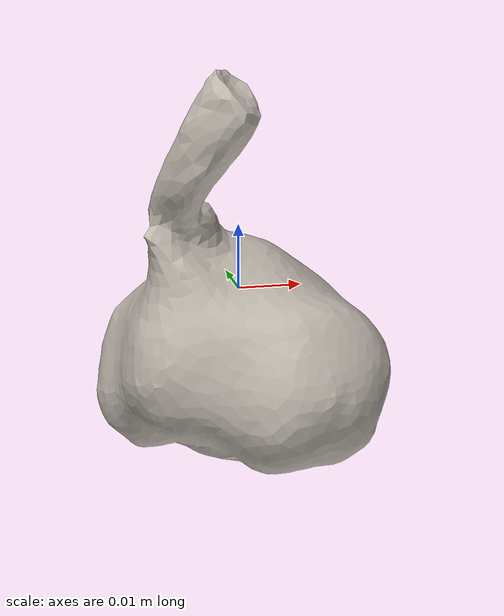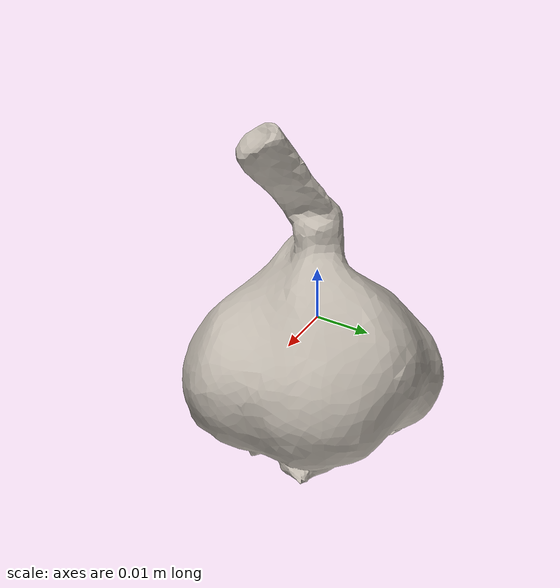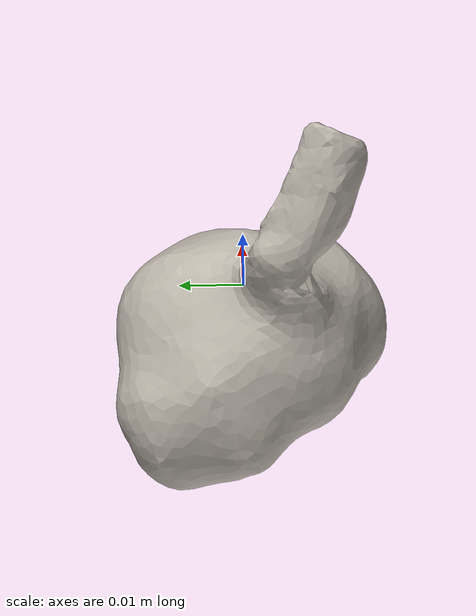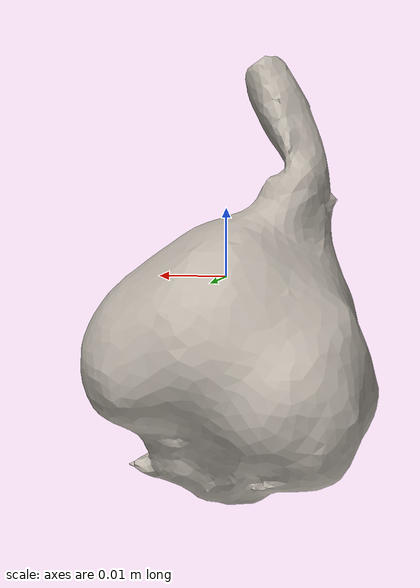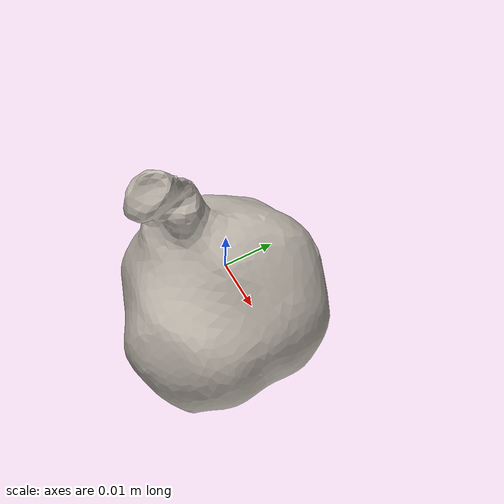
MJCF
<mujoco model="garlic_6">
  <asset>
    <mesh file="visual/model_normalized_0.obj" name="model_normalized_0_vis" scale="0.065 0.065 0.065" refquat="0.923879532511287 0.0 0.0 0.38268343236508984"/>
    <mesh file="collision/model_normalized_collision_22.obj" name="model_normalized_collision_22._coll" scale="0.065 0.065 0.065" refquat="0.923879532511287 0.0 0.0 0.38268343236508984"/>
    <mesh file="collision/model_normalized_collision_23.obj" name="model_normalized_collision_23._coll" scale="0.065 0.065 0.065" refquat="0.923879532511287 0.0 0.0 0.38268343236508984"/>
    <mesh file="collision/model_normalized_collision_21.obj" name="model_normalized_collision_21._coll" scale="0.065 0.065 0.065" refquat="0.923879532511287 0.0 0.0 0.38268343236508984"/>
    <mesh file="collision/model_normalized_collision_20.obj" name="model_normalized_collision_20._coll" scale="0.065 0.065 0.065" refquat="0.923879532511287 0.0 0.0 0.38268343236508984"/>
    <mesh file="collision/model_normalized_collision_24.obj" name="model_normalized_collision_24._coll" scale="0.065 0.065 0.065" refquat="0.923879532511287 0.0 0.0 0.38268343236508984"/>
    <mesh file="collision/model_normalized_collision_30.obj" name="model_normalized_collision_30._coll" scale="0.065 0.065 0.065" refquat="0.923879532511287 0.0 0.0 0.38268343236508984"/>
    <mesh file="collision/model_normalized_collision_18.obj" name="model_normalized_collision_18._coll" scale="0.065 0.065 0.065" refquat="0.923879532511287 0.0 0.0 0.38268343236508984"/>
    <mesh file="collision/model_normalized_collision_19.obj" name="model_normalized_collision_19._coll" scale="0.065 0.065 0.065" refquat="0.923879532511287 0.0 0.0 0.38268343236508984"/>
    <mesh file="collision/model_normalized_collision_31.obj" name="model_normalized_collision_31._coll" scale="0.065 0.065 0.065" refquat="0.923879532511287 0.0 0.0 0.38268343236508984"/>
    <mesh file="collision/model_normalized_collision_25.obj" name="model_normalized_collision_25._coll" scale="0.065 0.065 0.065" refquat="0.923879532511287 0.0 0.0 0.38268343236508984"/>
    <mesh file="collision/model_normalized_collision_27.obj" name="model_normalized_collision_27._coll" scale="0.065 0.065 0.065" refquat="0.923879532511287 0.0 0.0 0.38268343236508984"/>
    <mesh file="collision/model_normalized_collision_26.obj" name="model_normalized_collision_26._coll" scale="0.065 0.065 0.065" refquat="0.923879532511287 0.0 0.0 0.38268343236508984"/>
    <mesh file="collision/model_normalized_collision_9.obj" name="model_normalized_collision_9._coll" scale="0.065 0.065 0.065" refquat="0.923879532511287 0.0 0.0 0.38268343236508984"/>
    <mesh file="collision/model_normalized_collision_8.obj" name="model_normalized_collision_8._coll" scale="0.065 0.065 0.065" refquat="0.923879532511287 0.0 0.0 0.38268343236508984"/>
    <mesh file="collision/model_normalized_collision_6.obj" name="model_normalized_collision_6._coll" scale="0.065 0.065 0.065" refquat="0.923879532511287 0.0 0.0 0.38268343236508984"/>
    <mesh file="collision/model_normalized_collision_7.obj" name="model_normalized_collision_7._coll" scale="0.065 0.065 0.065" refquat="0.923879532511287 0.0 0.0 0.38268343236508984"/>
    <mesh file="collision/model_normalized_collision_5.obj" name="model_normalized_collision_5._coll" scale="0.065 0.065 0.065" refquat="0.923879532511287 0.0 0.0 0.38268343236508984"/>
    <mesh file="collision/model_normalized_collision_4.obj" name="model_normalized_collision_4._coll" scale="0.065 0.065 0.065" refquat="0.923879532511287 0.0 0.0 0.38268343236508984"/>
    <mesh file="collision/model_normalized_collision_0.obj" name="model_normalized_collision_0._coll" scale="0.065 0.065 0.065" refquat="0.923879532511287 0.0 0.0 0.38268343236508984"/>
    <mesh file="collision/model_normalized_collision_1.obj" name="model_normalized_collision_1._coll" scale="0.065 0.065 0.065" refquat="0.923879532511287 0.0 0.0 0.38268343236508984"/>
    <mesh file="collision/model_normalized_collision_3.obj" name="model_normalized_collision_3._coll" scale="0.065 0.065 0.065" refquat="0.923879532511287 0.0 0.0 0.38268343236508984"/>
    <mesh file="collision/model_normalized_collision_2.obj" name="model_normalized_collision_2._coll" scale="0.065 0.065 0.065" refquat="0.923879532511287 0.0 0.0 0.38268343236508984"/>
    <mesh file="collision/model_normalized_collision_17.obj" name="model_normalized_collision_17._coll" scale="0.065 0.065 0.065" refquat="0.923879532511287 0.0 0.0 0.38268343236508984"/>
    <mesh file="collision/model_normalized_collision_16.obj" name="model_normalized_collision_16._coll" scale="0.065 0.065 0.065" refquat="0.923879532511287 0.0 0.0 0.38268343236508984"/>
    <mesh file="collision/model_normalized_collision_28.obj" name="model_normalized_collision_28._coll" scale="0.065 0.065 0.065" refquat="0.923879532511287 0.0 0.0 0.38268343236508984"/>
    <mesh file="collision/model_normalized_collision_14.obj" name="model_normalized_collision_14._coll" scale="0.065 0.065 0.065" refquat="0.923879532511287 0.0 0.0 0.38268343236508984"/>
    <mesh file="collision/model_normalized_collision_15.obj" name="model_normalized_collision_15._coll" scale="0.065 0.065 0.065" refquat="0.923879532511287 0.0 0.0 0.38268343236508984"/>
    <mesh file="collision/model_normalized_collision_29.obj" name="model_normalized_collision_29._coll" scale="0.065 0.065 0.065" refquat="0.923879532511287 0.0 0.0 0.38268343236508984"/>
    <mesh file="collision/model_normalized_collision_11.obj" name="model_normalized_collision_11._coll" scale="0.065 0.065 0.065" refquat="0.923879532511287 0.0 0.0 0.38268343236508984"/>
    <mesh file="collision/model_normalized_collision_10.obj" name="model_normalized_collision_10._coll" scale="0.065 0.065 0.065" refquat="0.923879532511287 0.0 0.0 0.38268343236508984"/>
    <mesh file="collision/model_normalized_collision_12.obj" name="model_normalized_collision_12._coll" scale="0.065 0.065 0.065" refquat="0.923879532511287 0.0 0.0 0.38268343236508984"/>
    <mesh file="collision/model_normalized_collision_13.obj" name="model_normalized_collision_13._coll" scale="0.065 0.065 0.065" refquat="0.923879532511287 0.0 0.0 0.38268343236508984"/>
    <texture type="2d" name="image0" file="visual/image0.png"/>
    <material name="Garlic_u1_v1" texture="image0" specular="0.5" shininess="0.0"/>
  </asset>
  <worldbody>
  <body>
      <body name="object">
        <geom solimp="0.998 0.998 0.001" solref="0.001 1" density="100" friction="0.95 0.3 0.1" type="mesh" mesh="model_normalized_0_vis" conaffinity="0" contype="0" group="1" material="Garlic_u1_v1"/>
        <geom solimp="0.998 0.998 0.001" solref="0.001 1" density="100" friction="0.95 0.3 0.1" type="mesh" mesh="model_normalized_collision_22._coll" group="0" rgba="0.8 0.8 0.8 0.0"/>
        <geom solimp="0.998 0.998 0.001" solref="0.001 1" density="100" friction="0.95 0.3 0.1" type="mesh" mesh="model_normalized_collision_23._coll" group="0" rgba="0.8 0.8 0.8 0.0"/>
        <geom solimp="0.998 0.998 0.001" solref="0.001 1" density="100" friction="0.95 0.3 0.1" type="mesh" mesh="model_normalized_collision_21._coll" group="0" rgba="0.8 0.8 0.8 0.0"/>
        <geom solimp="0.998 0.998 0.001" solref="0.001 1" density="100" friction="0.95 0.3 0.1" type="mesh" mesh="model_normalized_collision_20._coll" group="0" rgba="0.8 0.8 0.8 0.0"/>
        <geom solimp="0.998 0.998 0.001" solref="0.001 1" density="100" friction="0.95 0.3 0.1" type="mesh" mesh="model_normalized_collision_24._coll" group="0" rgba="0.8 0.8 0.8 0.0"/>
        <geom solimp="0.998 0.998 0.001" solref="0.001 1" density="100" friction="0.95 0.3 0.1" type="mesh" mesh="model_normalized_collision_30._coll" group="0" rgba="0.8 0.8 0.8 0.0"/>
        <geom solimp="0.998 0.998 0.001" solref="0.001 1" density="100" friction="0.95 0.3 0.1" type="mesh" mesh="model_normalized_collision_18._coll" group="0" rgba="0.8 0.8 0.8 0.0"/>
        <geom solimp="0.998 0.998 0.001" solref="0.001 1" density="100" friction="0.95 0.3 0.1" type="mesh" mesh="model_normalized_collision_19._coll" group="0" rgba="0.8 0.8 0.8 0.0"/>
        <geom solimp="0.998 0.998 0.001" solref="0.001 1" density="100" friction="0.95 0.3 0.1" type="mesh" mesh="model_normalized_collision_31._coll" group="0" rgba="0.8 0.8 0.8 0.0"/>
        <geom solimp="0.998 0.998 0.001" solref="0.001 1" density="100" friction="0.95 0.3 0.1" type="mesh" mesh="model_normalized_collision_25._coll" group="0" rgba="0.8 0.8 0.8 0.0"/>
        <geom solimp="0.998 0.998 0.001" solref="0.001 1" density="100" friction="0.95 0.3 0.1" type="mesh" mesh="model_normalized_collision_27._coll" group="0" rgba="0.8 0.8 0.8 0.0"/>
        <geom solimp="0.998 0.998 0.001" solref="0.001 1" density="100" friction="0.95 0.3 0.1" type="mesh" mesh="model_normalized_collision_26._coll" group="0" rgba="0.8 0.8 0.8 0.0"/>
        <geom solimp="0.998 0.998 0.001" solref="0.001 1" density="100" friction="0.95 0.3 0.1" type="mesh" mesh="model_normalized_collision_9._coll" group="0" rgba="0.8 0.8 0.8 0.0"/>
        <geom solimp="0.998 0.998 0.001" solref="0.001 1" density="100" friction="0.95 0.3 0.1" type="mesh" mesh="model_normalized_collision_8._coll" group="0" rgba="0.8 0.8 0.8 0.0"/>
        <geom solimp="0.998 0.998 0.001" solref="0.001 1" density="100" friction="0.95 0.3 0.1" type="mesh" mesh="model_normalized_collision_6._coll" group="0" rgba="0.8 0.8 0.8 0.0"/>
        <geom solimp="0.998 0.998 0.001" solref="0.001 1" density="100" friction="0.95 0.3 0.1" type="mesh" mesh="model_normalized_collision_7._coll" group="0" rgba="0.8 0.8 0.8 0.0"/>
        <geom solimp="0.998 0.998 0.001" solref="0.001 1" density="100" friction="0.95 0.3 0.1" type="mesh" mesh="model_normalized_collision_5._coll" group="0" rgba="0.8 0.8 0.8 0.0"/>
        <geom solimp="0.998 0.998 0.001" solref="0.001 1" density="100" friction="0.95 0.3 0.1" type="mesh" mesh="model_normalized_collision_4._coll" group="0" rgba="0.8 0.8 0.8 0.0"/>
        <geom solimp="0.998 0.998 0.001" solref="0.001 1" density="100" friction="0.95 0.3 0.1" type="mesh" mesh="model_normalized_collision_0._coll" group="0" rgba="0.8 0.8 0.8 0.0"/>
        <geom solimp="0.998 0.998 0.001" solref="0.001 1" density="100" friction="0.95 0.3 0.1" type="mesh" mesh="model_normalized_collision_1._coll" group="0" rgba="0.8 0.8 0.8 0.0"/>
        <geom solimp="0.998 0.998 0.001" solref="0.001 1" density="100" friction="0.95 0.3 0.1" type="mesh" mesh="model_normalized_collision_3._coll" group="0" rgba="0.8 0.8 0.8 0.0"/>
        <geom solimp="0.998 0.998 0.001" solref="0.001 1" density="100" friction="0.95 0.3 0.1" type="mesh" mesh="model_normalized_collision_2._coll" group="0" rgba="0.8 0.8 0.8 0.0"/>
        <geom solimp="0.998 0.998 0.001" solref="0.001 1" density="100" friction="0.95 0.3 0.1" type="mesh" mesh="model_normalized_collision_17._coll" group="0" rgba="0.8 0.8 0.8 0.0"/>
        <geom solimp="0.998 0.998 0.001" solref="0.001 1" density="100" friction="0.95 0.3 0.1" type="mesh" mesh="model_normalized_collision_16._coll" group="0" rgba="0.8 0.8 0.8 0.0"/>
        <geom solimp="0.998 0.998 0.001" solref="0.001 1" density="100" friction="0.95 0.3 0.1" type="mesh" mesh="model_normalized_collision_28._coll" group="0" rgba="0.8 0.8 0.8 0.0"/>
        <geom solimp="0.998 0.998 0.001" solref="0.001 1" density="100" friction="0.95 0.3 0.1" type="mesh" mesh="model_normalized_collision_14._coll" group="0" rgba="0.8 0.8 0.8 0.0"/>
        <geom solimp="0.998 0.998 0.001" solref="0.001 1" density="100" friction="0.95 0.3 0.1" type="mesh" mesh="model_normalized_collision_15._coll" group="0" rgba="0.8 0.8 0.8 0.0"/>
        <geom solimp="0.998 0.998 0.001" solref="0.001 1" density="100" friction="0.95 0.3 0.1" type="mesh" mesh="model_normalized_collision_29._coll" group="0" rgba="0.8 0.8 0.8 0.0"/>
        <geom solimp="0.998 0.998 0.001" solref="0.001 1" density="100" friction="0.95 0.3 0.1" type="mesh" mesh="model_normalized_collision_11._coll" group="0" rgba="0.8 0.8 0.8 0.0"/>
        <geom solimp="0.998 0.998 0.001" solref="0.001 1" density="100" friction="0.95 0.3 0.1" type="mesh" mesh="model_normalized_collision_10._coll" group="0" rgba="0.8 0.8 0.8 0.0"/>
        <geom solimp="0.998 0.998 0.001" solref="0.001 1" density="100" friction="0.95 0.3 0.1" type="mesh" mesh="model_normalized_collision_12._coll" group="0" rgba="0.8 0.8 0.8 0.0"/>
        <geom solimp="0.998 0.998 0.001" solref="0.001 1" density="100" friction="0.95 0.3 0.1" type="mesh" mesh="model_normalized_collision_13._coll" group="0" rgba="0.8 0.8 0.8 0.0"/>
      </body>
      <site rgba="0 0 0 0" size="0.005" pos="-0.0002495024877189861 -0.0015065008780848876 -0.0321915126" name="bottom_site"/>
      <site rgba="0 0 0 0" size="0.005" pos="-0.0002495024877189861 -0.0015065008780848876 0.03223520365" name="top_site"/>
      <site rgba="0 0 0 0" size="0.005" pos="0.021373955941014638 0.020123444426423387 2.184552499999909e-05" name="horizontal_radius_site"/>
    </body>
    </worldbody>
</mujoco>
